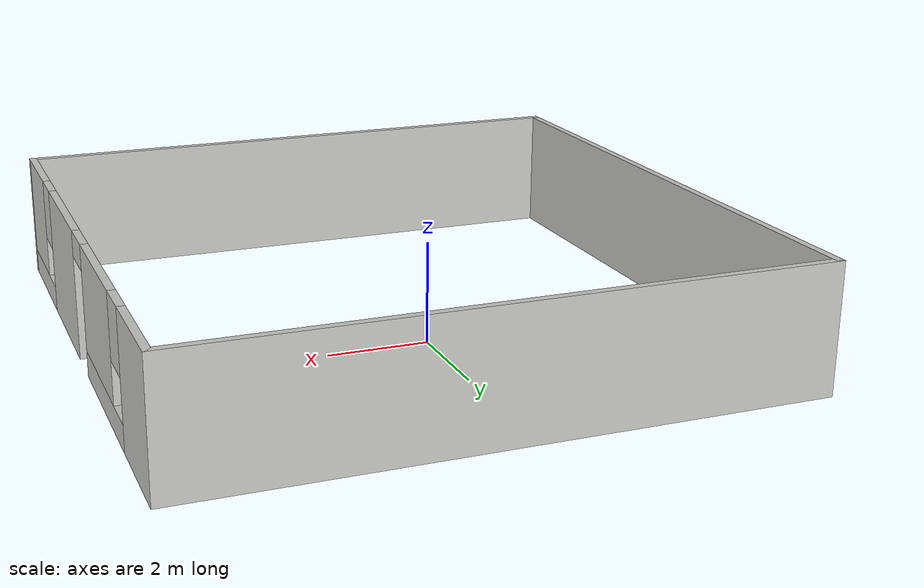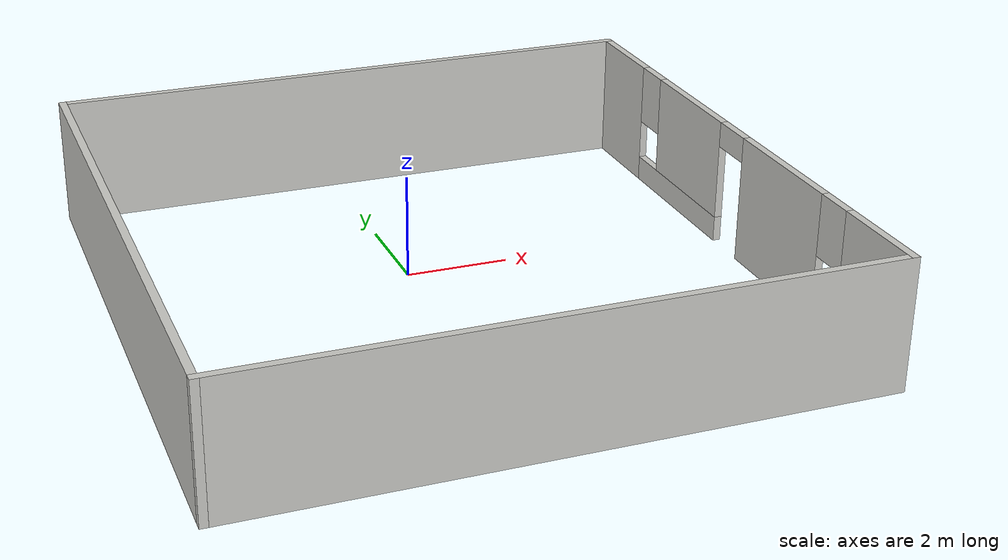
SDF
<?xml version='1.0'?>
<sdf version='1.6'>
  <model name='mywall'>
    <pose frame=''>0.355432 -1.10635 0 0 -0 0</pose>
    <link name='Wall_28'>
      <pose frame=''>5.925 0 0 0 0 -1.5708</pose>
      <visual name='Wall_28_Visual_0'>
        <pose frame=''>-4.98791 0 1.25 0 -0 0</pose>
        <geometry>
          <box>
            <size>2.02417 0.15 2.5</size>
          </box>
        </geometry>
        <material>
          <script>
            <uri>file://media/materials/scripts/gazebo.material</uri>
            <name>Gazebo/CeilingTiled</name>
          </script>
          <ambient>0.760784 0.662745 0.627451 1</ambient>
        </material>
        <meta>
          <layer>0</layer>
        </meta>
      </visual>
      <collision name='Wall_28_Collision_0'>
        <geometry>
          <box>
            <size>2.02417 0.15 2.5</size>
          </box>
        </geometry>
        <pose frame=''>-4.98791 0 1.25 0 -0 0</pose>
      </collision>
      <visual name='Wall_28_Visual_1'>
        <pose frame=''>1.76487 0 1.25 0 -0 0</pose>
        <geometry>
          <box>
            <size>2.83947 0.15 2.5</size>
          </box>
        </geometry>
        <material>
          <script>
            <uri>file://media/materials/scripts/gazebo.material</uri>
            <name>Gazebo/CeilingTiled</name>
          </script>
          <ambient>0.760784 0.662745 0.627451 1</ambient>
        </material>
        <meta>
          <layer>0</layer>
        </meta>
      </visual>
      <collision name='Wall_28_Collision_1'>
        <geometry>
          <box>
            <size>2.83947 0.15 2.5</size>
          </box>
        </geometry>
        <pose frame=''>1.76487 0 1.25 0 -0 0</pose>
      </collision>
      <visual name='Wall_28_Visual_2'>
        <pose frame=''>-2.26535 0 0.25 0 -0 0</pose>
        <geometry>
          <box>
            <size>3.42096 0.15 0.5</size>
          </box>
        </geometry>
        <material>
          <script>
            <uri>file://media/materials/scripts/gazebo.material</uri>
            <name>Gazebo/CeilingTiled</name>
          </script>
          <ambient>0.760784 0.662745 0.627451 1</ambient>
        </material>
        <meta>
          <layer>0</layer>
        </meta>
      </visual>
      <collision name='Wall_28_Collision_2'>
        <geometry>
          <box>
            <size>3.42096 0.15 0.5</size>
          </box>
        </geometry>
        <pose frame=''>-2.26535 0 0.25 0 -0 0</pose>
      </collision>
      <visual name='Wall_28_Visual_3'>
        <pose frame=''>4.5923 0 0.25 0 -0 0</pose>
        <geometry>
          <box>
            <size>2.8154 0.15 0.5</size>
          </box>
        </geometry>
        <material>
          <script>
            <uri>file://media/materials/scripts/gazebo.material</uri>
            <name>Gazebo/CeilingTiled</name>
          </script>
          <ambient>0.760784 0.662745 0.627451 1</ambient>
        </material>
        <meta>
          <layer>0</layer>
        </meta>
      </visual>
      <collision name='Wall_28_Collision_3'>
        <geometry>
          <box>
            <size>2.8154 0.15 0.5</size>
          </box>
        </geometry>
        <pose frame=''>4.5923 0 0.25 0 -0 0</pose>
      </collision>
      <visual name='Wall_28_Visual_4'>
        <pose frame=''>-1.86535 0 1.5 0 -0 0</pose>
        <geometry>
          <box>
            <size>2.62096 0.15 2</size>
          </box>
        </geometry>
        <material>
          <script>
            <uri>file://media/materials/scripts/gazebo.material</uri>
            <name>Gazebo/CeilingTiled</name>
          </script>
          <ambient>0.760784 0.662745 0.627451 1</ambient>
        </material>
        <meta>
          <layer>0</layer>
        </meta>
      </visual>
      <collision name='Wall_28_Collision_4'>
        <geometry>
          <box>
            <size>2.62096 0.15 2</size>
          </box>
        </geometry>
        <pose frame=''>-1.86535 0 1.5 0 -0 0</pose>
      </collision>
      <visual name='Wall_28_Visual_5'>
        <pose frame=''>-1.86535 0 1.5 0 -0 0</pose>
        <geometry>
          <box>
            <size>2.62096 0.15 2</size>
          </box>
        </geometry>
        <material>
          <script>
            <uri>file://media/materials/scripts/gazebo.material</uri>
            <name>Gazebo/CeilingTiled</name>
          </script>
          <ambient>0.760784 0.662745 0.627451 1</ambient>
        </material>
        <meta>
          <layer>0</layer>
        </meta>
      </visual>
      <collision name='Wall_28_Collision_5'>
        <geometry>
          <box>
            <size>2.62096 0.15 2</size>
          </box>
        </geometry>
        <pose frame=''>-1.86535 0 1.5 0 -0 0</pose>
      </collision>
      <visual name='Wall_28_Visual_6'>
        <pose frame=''>4.9923 0 1.5 0 -0 0</pose>
        <geometry>
          <box>
            <size>2.01539 0.15 2</size>
          </box>
        </geometry>
        <material>
          <script>
            <uri>file://media/materials/scripts/gazebo.material</uri>
            <name>Gazebo/CeilingTiled</name>
          </script>
          <ambient>0.760784 0.662745 0.627451 1</ambient>
        </material>
        <meta>
          <layer>0</layer>
        </meta>
      </visual>
      <collision name='Wall_28_Collision_6'>
        <geometry>
          <box>
            <size>2.01539 0.15 2</size>
          </box>
        </geometry>
        <pose frame=''>4.9923 0 1.5 0 -0 0</pose>
      </collision>
      <visual name='Wall_28_Visual_7'>
        <pose frame=''>-3.57583 0 1.9 0 -0 0</pose>
        <geometry>
          <box>
            <size>0.8 0.15 1.2</size>
          </box>
        </geometry>
        <material>
          <script>
            <uri>file://media/materials/scripts/gazebo.material</uri>
            <name>Gazebo/CeilingTiled</name>
          </script>
          <ambient>0.760784 0.662745 0.627451 1</ambient>
        </material>
        <meta>
          <layer>0</layer>
        </meta>
      </visual>
      <collision name='Wall_28_Collision_7'>
        <geometry>
          <box>
            <size>0.8 0.15 1.2</size>
          </box>
        </geometry>
        <pose frame=''>-3.57583 0 1.9 0 -0 0</pose>
      </collision>
      <visual name='Wall_28_Visual_8'>
        <pose frame=''>3.5846 0 1.9 0 -0 0</pose>
        <geometry>
          <box>
            <size>0.8 0.15 1.2</size>
          </box>
        </geometry>
        <material>
          <script>
            <uri>file://media/materials/scripts/gazebo.material</uri>
            <name>Gazebo/CeilingTiled</name>
          </script>
          <ambient>0.760784 0.662745 0.627451 1</ambient>
        </material>
        <meta>
          <layer>0</layer>
        </meta>
      </visual>
      <collision name='Wall_28_Collision_8'>
        <geometry>
          <box>
            <size>0.8 0.15 1.2</size>
          </box>
        </geometry>
        <pose frame=''>3.5846 0 1.9 0 -0 0</pose>
      </collision>
      <visual name='Wall_28_Visual_9'>
        <pose frame=''>-0.104865 0 2.25 0 -0 0</pose>
        <geometry>
          <box>
            <size>0.9 0.15 0.5</size>
          </box>
        </geometry>
        <material>
          <script>
            <uri>file://media/materials/scripts/gazebo.material</uri>
            <name>Gazebo/CeilingTiled</name>
          </script>
          <ambient>0.760784 0.662745 0.627451 1</ambient>
        </material>
        <meta>
          <layer>0</layer>
        </meta>
      </visual>
      <collision name='Wall_28_Collision_9'>
        <geometry>
          <box>
            <size>0.9 0.15 0.5</size>
          </box>
        </geometry>
        <pose frame=''>-0.104865 0 2.25 0 -0 0</pose>
      </collision>
      <visual name='Wall_28_Visual_10'>
        <pose frame=''>-0.104865 0 2.25 0 -0 0</pose>
        <geometry>
          <box>
            <size>0.9 0.15 0.5</size>
          </box>
        </geometry>
        <material>
          <script>
            <uri>file://media/materials/scripts/gazebo.material</uri>
            <name>Gazebo/CeilingTiled</name>
          </script>
          <ambient>0.760784 0.662745 0.627451 1</ambient>
        </material>
        <meta>
          <layer>0</layer>
        </meta>
      </visual>
      <collision name='Wall_28_Collision_10'>
        <geometry>
          <box>
            <size>0.9 0.15 0.5</size>
          </box>
        </geometry>
        <pose frame=''>-0.104865 0 2.25 0 -0 0</pose>
      </collision>
    </link>
    <link name='Wall_30'>
      <collision name='Wall_30_Collision'>
        <geometry>
          <box>
            <size>12 0.15 2.5</size>
          </box>
        </geometry>
        <pose frame=''>0 0 1.25 0 -0 0</pose>
      </collision>
      <visual name='Wall_30_Visual'>
        <pose frame=''>0 0 1.25 0 -0 0</pose>
        <geometry>
          <box>
            <size>12 0.15 2.5</size>
          </box>
        </geometry>
        <material>
          <script>
            <uri>file://media/materials/scripts/gazebo.material</uri>
            <name>Gazebo/CeilingTiled</name>
          </script>
          <ambient>0.760784 0.662745 0.627451 1</ambient>
        </material>
        <meta>
          <layer>0</layer>
        </meta>
      </visual>
      <pose frame=''>0 -5.925 0 0 -0 3.14159</pose>
    </link>
    <link name='Wall_32'>
      <collision name='Wall_32_Collision'>
        <geometry>
          <box>
            <size>12 0.15 2.5</size>
          </box>
        </geometry>
        <pose frame=''>0 0 1.25 0 -0 0</pose>
      </collision>
      <visual name='Wall_32_Visual'>
        <pose frame=''>0 0 1.25 0 -0 0</pose>
        <geometry>
          <box>
            <size>12 0.15 2.5</size>
          </box>
        </geometry>
        <material>
          <script>
            <uri>file://media/materials/scripts/gazebo.material</uri>
            <name>Gazebo/CeilingTiled</name>
          </script>
          <ambient>0.760784 0.662745 0.627451 1</ambient>
        </material>
        <meta>
          <layer>0</layer>
        </meta>
      </visual>
      <pose frame=''>-5.925 0 0 0 -0 1.5708</pose>
    </link>
    <link name='Wall_33'>
      <collision name='Wall_33_Collision'>
        <geometry>
          <box>
            <size>12 0.15 2.5</size>
          </box>
        </geometry>
        <pose frame=''>0 0 1.25 0 -0 0</pose>
      </collision>
      <visual name='Wall_33_Visual'>
        <pose frame=''>0 0 1.25 0 -0 0</pose>
        <geometry>
          <box>
            <size>12 0.15 2.5</size>
          </box>
        </geometry>
        <material>
          <script>
            <uri>file://media/materials/scripts/gazebo.material</uri>
            <name>Gazebo/CeilingTiled</name>
          </script>
          <ambient>0.760784 0.662745 0.627451 1</ambient>
        </material>
        <meta>
          <layer>0</layer>
        </meta>
      </visual>
      <pose frame=''>0 5.925 0 0 -0 0</pose>
    </link>
    <static>1</static>
  </model>
</sdf>
